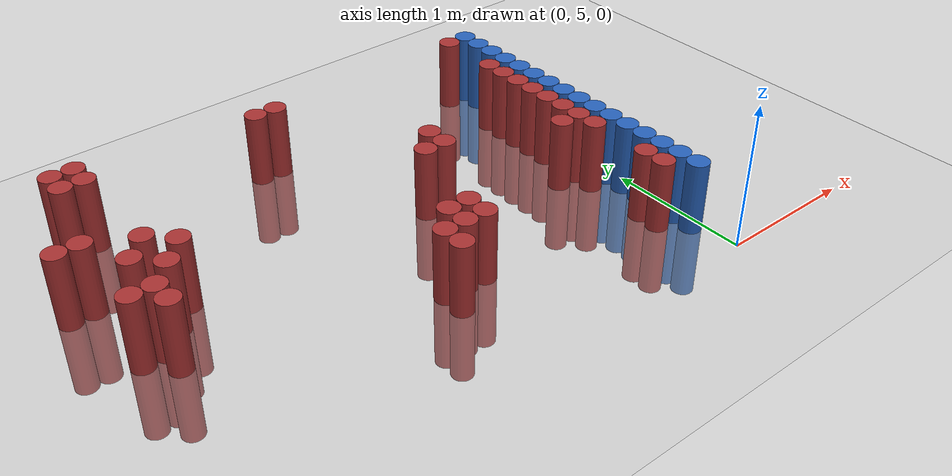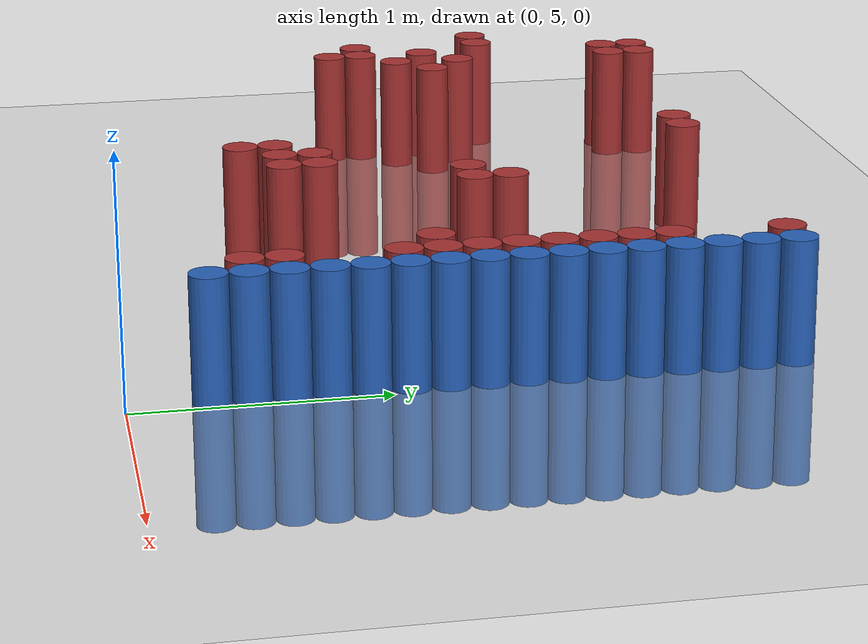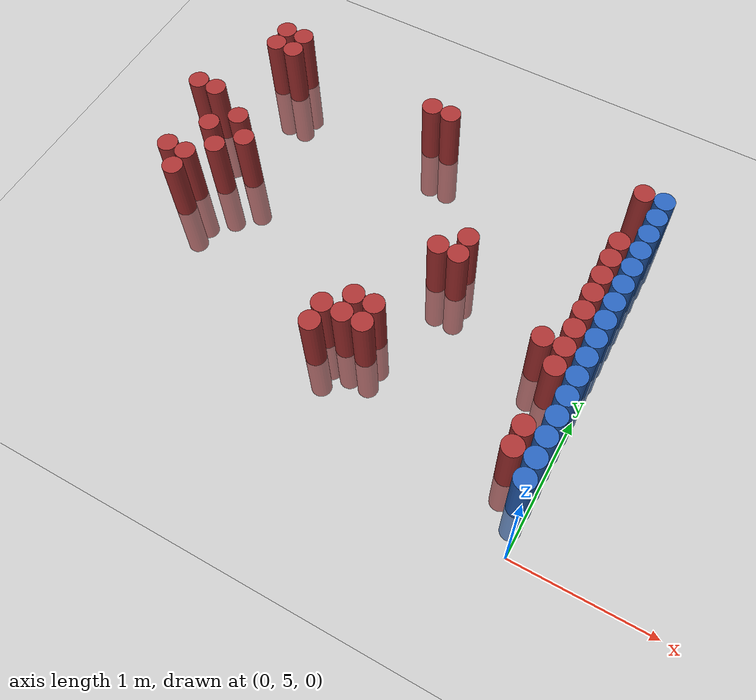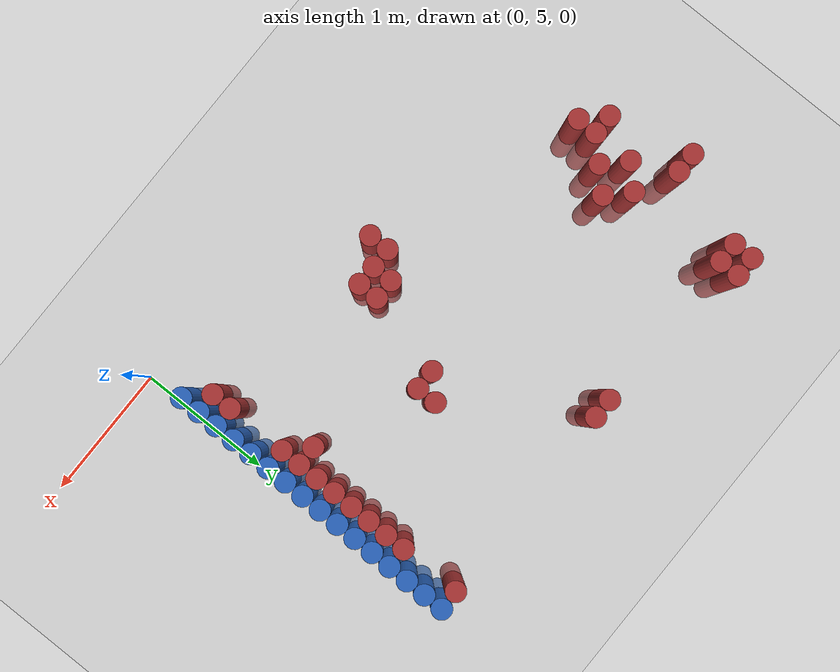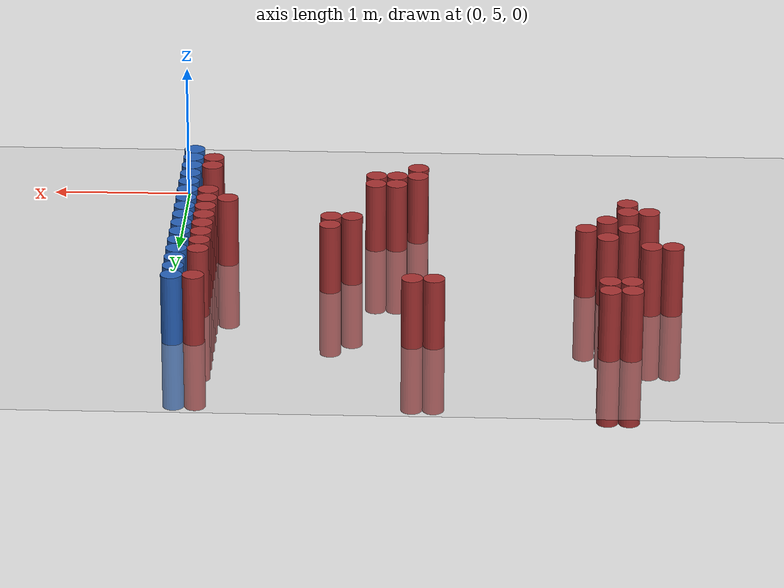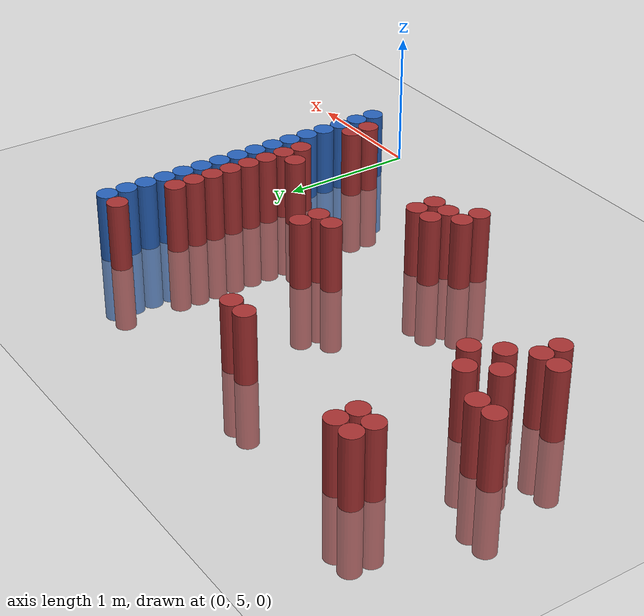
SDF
<sdf version="1.6">
 <world name="default">
  <model name="ground_plane">
   <static>1</static>
   <link name="link">
    <collision name="collision">
     <geometry><plane><normal>0 0 1</normal><size>100 100</size></plane></geometry>
     <surface><friction><ode><mu>100</mu><mu2>50</mu2></ode></friction></surface>
    </collision>
    <visual name="visual">
     <cast_shadows>0</cast_shadows>
     <geometry><plane><normal>0 0 1</normal><size>100 100</size></plane></geometry>
     <material>
      <script><uri>file://media/materials/scripts/gazebo.material</uri><name>Gazebo/Grey</name></script>
     </material>
    </visual>
   </link>
  </model>
  <model name="unit_cylinder_151">
   <static>1</static>
   <pose>-3.525000 6.975000 0.000000 0.000000 0.000000 0.000000</pose>
   <link name="link">
    <inertial>
     <mass>1</mass>
     <inertia><ixx>0.145833</ixx><ixy>0</ixy><ixz>0</ixz><iyy>0.145833</iyy><iyz>0</iyz><izz>0.125</izz></inertia>
    </inertial>
    <collision name="collision">
     <geometry><cylinder><radius>0.075000</radius><length>1</length></cylinder></geometry>
    </collision>
    <visual name="visual">
     <geometry><cylinder><radius>0.075000</radius><length>1</length></cylinder></geometry>
     <material>
      <ambient>0.648000 0.192000 0.192000 1</ambient>
      <diffuse>0.648000 0.192000 0.192000 1</diffuse>
     </material>
     <material>
      <script><name>Gazebo/Grey</name><uri>file://media/materials/scripts/gazebo.material</uri></script>
     </material>
    </visual>
   </link>
  </model>
  <model name="unit_cylinder_153">
   <static>1</static>
   <pose>-3.375000 6.375000 0.000000 0.000000 0.000000 0.000000</pose>
   <link name="link">
    <inertial>
     <mass>1</mass>
     <inertia><ixx>0.145833</ixx><ixy>0</ixy><ixz>0</ixz><iyy>0.145833</iyy><iyz>0</iyz><izz>0.125</izz></inertia>
    </inertial>
    <collision name="collision">
     <geometry><cylinder><radius>0.075000</radius><length>1</length></cylinder></geometry>
    </collision>
    <visual name="visual">
     <geometry><cylinder><radius>0.075000</radius><length>1</length></cylinder></geometry>
     <material>
      <ambient>0.648000 0.192000 0.192000 1</ambient>
      <diffuse>0.648000 0.192000 0.192000 1</diffuse>
     </material>
     <material>
      <script><name>Gazebo/Grey</name><uri>file://media/materials/scripts/gazebo.material</uri></script>
     </material>
    </visual>
   </link>
  </model>
  <model name="unit_cylinder_154">
   <static>1</static>
   <pose>-3.375000 6.975000 0.000000 0.000000 0.000000 0.000000</pose>
   <link name="link">
    <inertial>
     <mass>1</mass>
     <inertia><ixx>0.145833</ixx><ixy>0</ixy><ixz>0</ixz><iyy>0.145833</iyy><iyz>0</iyz><izz>0.125</izz></inertia>
    </inertial>
    <collision name="collision">
     <geometry><cylinder><radius>0.075000</radius><length>1</length></cylinder></geometry>
    </collision>
    <visual name="visual">
     <geometry><cylinder><radius>0.075000</radius><length>1</length></cylinder></geometry>
     <material>
      <ambient>0.648000 0.192000 0.192000 1</ambient>
      <diffuse>0.648000 0.192000 0.192000 1</diffuse>
     </material>
     <material>
      <script><name>Gazebo/Grey</name><uri>file://media/materials/scripts/gazebo.material</uri></script>
     </material>
    </visual>
   </link>
  </model>
  <model name="unit_cylinder_155">
   <static>1</static>
   <pose>-3.225000 6.225000 0.000000 0.000000 0.000000 0.000000</pose>
   <link name="link">
    <inertial>
     <mass>1</mass>
     <inertia><ixx>0.145833</ixx><ixy>0</ixy><ixz>0</ixz><iyy>0.145833</iyy><iyz>0</iyz><izz>0.125</izz></inertia>
    </inertial>
    <collision name="collision">
     <geometry><cylinder><radius>0.075000</radius><length>1</length></cylinder></geometry>
    </collision>
    <visual name="visual">
     <geometry><cylinder><radius>0.075000</radius><length>1</length></cylinder></geometry>
     <material>
      <ambient>0.648000 0.192000 0.192000 1</ambient>
      <diffuse>0.648000 0.192000 0.192000 1</diffuse>
     </material>
     <material>
      <script><name>Gazebo/Grey</name><uri>file://media/materials/scripts/gazebo.material</uri></script>
     </material>
    </visual>
   </link>
  </model>
  <model name="unit_cylinder_156">
   <static>1</static>
   <pose>-3.225000 6.375000 0.000000 0.000000 0.000000 0.000000</pose>
   <link name="link">
    <inertial>
     <mass>1</mass>
     <inertia><ixx>0.145833</ixx><ixy>0</ixy><ixz>0</ixz><iyy>0.145833</iyy><iyz>0</iyz><izz>0.125</izz></inertia>
    </inertial>
    <collision name="collision">
     <geometry><cylinder><radius>0.075000</radius><length>1</length></cylinder></geometry>
    </collision>
    <visual name="visual">
     <geometry><cylinder><radius>0.075000</radius><length>1</length></cylinder></geometry>
     <material>
      <ambient>0.648000 0.192000 0.192000 1</ambient>
      <diffuse>0.648000 0.192000 0.192000 1</diffuse>
     </material>
     <material>
      <script><name>Gazebo/Grey</name><uri>file://media/materials/scripts/gazebo.material</uri></script>
     </material>
    </visual>
   </link>
  </model>
  <model name="unit_cylinder_157">
   <static>1</static>
   <pose>-3.225000 6.675000 0.000000 0.000000 0.000000 0.000000</pose>
   <link name="link">
    <inertial>
     <mass>1</mass>
     <inertia><ixx>0.145833</ixx><ixy>0</ixy><ixz>0</ixz><iyy>0.145833</iyy><iyz>0</iyz><izz>0.125</izz></inertia>
    </inertial>
    <collision name="collision">
     <geometry><cylinder><radius>0.075000</radius><length>1</length></cylinder></geometry>
    </collision>
    <visual name="visual">
     <geometry><cylinder><radius>0.075000</radius><length>1</length></cylinder></geometry>
     <material>
      <ambient>0.648000 0.192000 0.192000 1</ambient>
      <diffuse>0.648000 0.192000 0.192000 1</diffuse>
     </material>
     <material>
      <script><name>Gazebo/Grey</name><uri>file://media/materials/scripts/gazebo.material</uri></script>
     </material>
    </visual>
   </link>
  </model>
  <model name="unit_cylinder_158">
   <static>1</static>
   <pose>-3.225000 7.575000 0.000000 0.000000 0.000000 0.000000</pose>
   <link name="link">
    <inertial>
     <mass>1</mass>
     <inertia><ixx>0.145833</ixx><ixy>0</ixy><ixz>0</ixz><iyy>0.145833</iyy><iyz>0</iyz><izz>0.125</izz></inertia>
    </inertial>
    <collision name="collision">
     <geometry><cylinder><radius>0.075000</radius><length>1</length></cylinder></geometry>
    </collision>
    <visual name="visual">
     <geometry><cylinder><radius>0.075000</radius><length>1</length></cylinder></geometry>
     <material>
      <ambient>0.648000 0.192000 0.192000 1</ambient>
      <diffuse>0.648000 0.192000 0.192000 1</diffuse>
     </material>
     <material>
      <script><name>Gazebo/Grey</name><uri>file://media/materials/scripts/gazebo.material</uri></script>
     </material>
    </visual>
   </link>
  </model>
  <model name="unit_cylinder_159">
   <static>1</static>
   <pose>-3.225000 7.725000 0.000000 0.000000 0.000000 0.000000</pose>
   <link name="link">
    <inertial>
     <mass>1</mass>
     <inertia><ixx>0.145833</ixx><ixy>0</ixy><ixz>0</ixz><iyy>0.145833</iyy><iyz>0</iyz><izz>0.125</izz></inertia>
    </inertial>
    <collision name="collision">
     <geometry><cylinder><radius>0.075000</radius><length>1</length></cylinder></geometry>
    </collision>
    <visual name="visual">
     <geometry><cylinder><radius>0.075000</radius><length>1</length></cylinder></geometry>
     <material>
      <ambient>0.648000 0.192000 0.192000 1</ambient>
      <diffuse>0.648000 0.192000 0.192000 1</diffuse>
     </material>
     <material>
      <script><name>Gazebo/Grey</name><uri>file://media/materials/scripts/gazebo.material</uri></script>
     </material>
    </visual>
   </link>
  </model>
  <model name="unit_cylinder_160">
   <static>1</static>
   <pose>-3.075000 6.525000 0.000000 0.000000 0.000000 0.000000</pose>
   <link name="link">
    <inertial>
     <mass>1</mass>
     <inertia><ixx>0.145833</ixx><ixy>0</ixy><ixz>0</ixz><iyy>0.145833</iyy><iyz>0</iyz><izz>0.125</izz></inertia>
    </inertial>
    <collision name="collision">
     <geometry><cylinder><radius>0.075000</radius><length>1</length></cylinder></geometry>
    </collision>
    <visual name="visual">
     <geometry><cylinder><radius>0.075000</radius><length>1</length></cylinder></geometry>
     <material>
      <ambient>0.648000 0.192000 0.192000 1</ambient>
      <diffuse>0.648000 0.192000 0.192000 1</diffuse>
     </material>
     <material>
      <script><name>Gazebo/Grey</name><uri>file://media/materials/scripts/gazebo.material</uri></script>
     </material>
    </visual>
   </link>
  </model>
  <model name="unit_cylinder_161">
   <static>1</static>
   <pose>-3.075000 6.825000 0.000000 0.000000 0.000000 0.000000</pose>
   <link name="link">
    <inertial>
     <mass>1</mass>
     <inertia><ixx>0.145833</ixx><ixy>0</ixy><ixz>0</ixz><iyy>0.145833</iyy><iyz>0</iyz><izz>0.125</izz></inertia>
    </inertial>
    <collision name="collision">
     <geometry><cylinder><radius>0.075000</radius><length>1</length></cylinder></geometry>
    </collision>
    <visual name="visual">
     <geometry><cylinder><radius>0.075000</radius><length>1</length></cylinder></geometry>
     <material>
      <ambient>0.648000 0.192000 0.192000 1</ambient>
      <diffuse>0.648000 0.192000 0.192000 1</diffuse>
     </material>
     <material>
      <script><name>Gazebo/Grey</name><uri>file://media/materials/scripts/gazebo.material</uri></script>
     </material>
    </visual>
   </link>
  </model>
  <model name="unit_cylinder_162">
   <static>1</static>
   <pose>-3.075000 7.575000 0.000000 0.000000 0.000000 0.000000</pose>
   <link name="link">
    <inertial>
     <mass>1</mass>
     <inertia><ixx>0.145833</ixx><ixy>0</ixy><ixz>0</ixz><iyy>0.145833</iyy><iyz>0</iyz><izz>0.125</izz></inertia>
    </inertial>
    <collision name="collision">
     <geometry><cylinder><radius>0.075000</radius><length>1</length></cylinder></geometry>
    </collision>
    <visual name="visual">
     <geometry><cylinder><radius>0.075000</radius><length>1</length></cylinder></geometry>
     <material>
      <ambient>0.648000 0.192000 0.192000 1</ambient>
      <diffuse>0.648000 0.192000 0.192000 1</diffuse>
     </material>
     <material>
      <script><name>Gazebo/Grey</name><uri>file://media/materials/scripts/gazebo.material</uri></script>
     </material>
    </visual>
   </link>
  </model>
  <model name="unit_cylinder_163">
   <static>1</static>
   <pose>-3.075000 7.725000 0.000000 0.000000 0.000000 0.000000</pose>
   <link name="link">
    <inertial>
     <mass>1</mass>
     <inertia><ixx>0.145833</ixx><ixy>0</ixy><ixz>0</ixz><iyy>0.145833</iyy><iyz>0</iyz><izz>0.125</izz></inertia>
    </inertial>
    <collision name="collision">
     <geometry><cylinder><radius>0.075000</radius><length>1</length></cylinder></geometry>
    </collision>
    <visual name="visual">
     <geometry><cylinder><radius>0.075000</radius><length>1</length></cylinder></geometry>
     <material>
      <ambient>0.648000 0.192000 0.192000 1</ambient>
      <diffuse>0.648000 0.192000 0.192000 1</diffuse>
     </material>
     <material>
      <script><name>Gazebo/Grey</name><uri>file://media/materials/scripts/gazebo.material</uri></script>
     </material>
    </visual>
   </link>
  </model>
  <model name="unit_cylinder_166">
   <static>1</static>
   <pose>-2.925000 6.675000 0.000000 0.000000 0.000000 0.000000</pose>
   <link name="link">
    <inertial>
     <mass>1</mass>
     <inertia><ixx>0.145833</ixx><ixy>0</ixy><ixz>0</ixz><iyy>0.145833</iyy><iyz>0</iyz><izz>0.125</izz></inertia>
    </inertial>
    <collision name="collision">
     <geometry><cylinder><radius>0.075000</radius><length>1</length></cylinder></geometry>
    </collision>
    <visual name="visual">
     <geometry><cylinder><radius>0.075000</radius><length>1</length></cylinder></geometry>
     <material>
      <ambient>0.648000 0.192000 0.192000 1</ambient>
      <diffuse>0.648000 0.192000 0.192000 1</diffuse>
     </material>
     <material>
      <script><name>Gazebo/Grey</name><uri>file://media/materials/scripts/gazebo.material</uri></script>
     </material>
    </visual>
   </link>
  </model>
  <model name="unit_cylinder_177">
   <static>1</static>
   <pose>-1.875000 7.575000 0.000000 0.000000 0.000000 0.000000</pose>
   <link name="link">
    <inertial>
     <mass>1</mass>
     <inertia><ixx>0.145833</ixx><ixy>0</ixy><ixz>0</ixz><iyy>0.145833</iyy><iyz>0</iyz><izz>0.125</izz></inertia>
    </inertial>
    <collision name="collision">
     <geometry><cylinder><radius>0.075000</radius><length>1</length></cylinder></geometry>
    </collision>
    <visual name="visual">
     <geometry><cylinder><radius>0.075000</radius><length>1</length></cylinder></geometry>
     <material>
      <ambient>0.648000 0.192000 0.192000 1</ambient>
      <diffuse>0.648000 0.192000 0.192000 1</diffuse>
     </material>
     <material>
      <script><name>Gazebo/Grey</name><uri>file://media/materials/scripts/gazebo.material</uri></script>
     </material>
    </visual>
   </link>
  </model>
  <model name="unit_cylinder_186">
   <static>1</static>
   <pose>-1.725000 5.625000 0.000000 0.000000 0.000000 0.000000</pose>
   <link name="link">
    <inertial>
     <mass>1</mass>
     <inertia><ixx>0.145833</ixx><ixy>0</ixy><ixz>0</ixz><iyy>0.145833</iyy><iyz>0</iyz><izz>0.125</izz></inertia>
    </inertial>
    <collision name="collision">
     <geometry><cylinder><radius>0.075000</radius><length>1</length></cylinder></geometry>
    </collision>
    <visual name="visual">
     <geometry><cylinder><radius>0.075000</radius><length>1</length></cylinder></geometry>
     <material>
      <ambient>0.648000 0.192000 0.192000 1</ambient>
      <diffuse>0.648000 0.192000 0.192000 1</diffuse>
     </material>
     <material>
      <script><name>Gazebo/Grey</name><uri>file://media/materials/scripts/gazebo.material</uri></script>
     </material>
    </visual>
   </link>
  </model>
  <model name="unit_cylinder_187">
   <static>1</static>
   <pose>-1.725000 5.775000 0.000000 0.000000 0.000000 0.000000</pose>
   <link name="link">
    <inertial>
     <mass>1</mass>
     <inertia><ixx>0.145833</ixx><ixy>0</ixy><ixz>0</ixz><iyy>0.145833</iyy><iyz>0</iyz><izz>0.125</izz></inertia>
    </inertial>
    <collision name="collision">
     <geometry><cylinder><radius>0.075000</radius><length>1</length></cylinder></geometry>
    </collision>
    <visual name="visual">
     <geometry><cylinder><radius>0.075000</radius><length>1</length></cylinder></geometry>
     <material>
      <ambient>0.648000 0.192000 0.192000 1</ambient>
      <diffuse>0.648000 0.192000 0.192000 1</diffuse>
     </material>
     <material>
      <script><name>Gazebo/Grey</name><uri>file://media/materials/scripts/gazebo.material</uri></script>
     </material>
    </visual>
   </link>
  </model>
  <model name="unit_cylinder_188">
   <static>1</static>
   <pose>-1.725000 7.575000 0.000000 0.000000 0.000000 0.000000</pose>
   <link name="link">
    <inertial>
     <mass>1</mass>
     <inertia><ixx>0.145833</ixx><ixy>0</ixy><ixz>0</ixz><iyy>0.145833</iyy><iyz>0</iyz><izz>0.125</izz></inertia>
    </inertial>
    <collision name="collision">
     <geometry><cylinder><radius>0.075000</radius><length>1</length></cylinder></geometry>
    </collision>
    <visual name="visual">
     <geometry><cylinder><radius>0.075000</radius><length>1</length></cylinder></geometry>
     <material>
      <ambient>0.648000 0.192000 0.192000 1</ambient>
      <diffuse>0.648000 0.192000 0.192000 1</diffuse>
     </material>
     <material>
      <script><name>Gazebo/Grey</name><uri>file://media/materials/scripts/gazebo.material</uri></script>
     </material>
    </visual>
   </link>
  </model>
  <model name="unit_cylinder_192">
   <static>1</static>
   <pose>-1.575000 5.775000 0.000000 0.000000 0.000000 0.000000</pose>
   <link name="link">
    <inertial>
     <mass>1</mass>
     <inertia><ixx>0.145833</ixx><ixy>0</ixy><ixz>0</ixz><iyy>0.145833</iyy><iyz>0</iyz><izz>0.125</izz></inertia>
    </inertial>
    <collision name="collision">
     <geometry><cylinder><radius>0.075000</radius><length>1</length></cylinder></geometry>
    </collision>
    <visual name="visual">
     <geometry><cylinder><radius>0.075000</radius><length>1</length></cylinder></geometry>
     <material>
      <ambient>0.648000 0.192000 0.192000 1</ambient>
      <diffuse>0.648000 0.192000 0.192000 1</diffuse>
     </material>
     <material>
      <script><name>Gazebo/Grey</name><uri>file://media/materials/scripts/gazebo.material</uri></script>
     </material>
    </visual>
   </link>
  </model>
  <model name="unit_cylinder_193">
   <static>1</static>
   <pose>-1.575000 5.925000 0.000000 0.000000 0.000000 0.000000</pose>
   <link name="link">
    <inertial>
     <mass>1</mass>
     <inertia><ixx>0.145833</ixx><ixy>0</ixy><ixz>0</ixz><iyy>0.145833</iyy><iyz>0</iyz><izz>0.125</izz></inertia>
    </inertial>
    <collision name="collision">
     <geometry><cylinder><radius>0.075000</radius><length>1</length></cylinder></geometry>
    </collision>
    <visual name="visual">
     <geometry><cylinder><radius>0.075000</radius><length>1</length></cylinder></geometry>
     <material>
      <ambient>0.648000 0.192000 0.192000 1</ambient>
      <diffuse>0.648000 0.192000 0.192000 1</diffuse>
     </material>
     <material>
      <script><name>Gazebo/Grey</name><uri>file://media/materials/scripts/gazebo.material</uri></script>
     </material>
    </visual>
   </link>
  </model>
  <model name="unit_cylinder_196">
   <static>1</static>
   <pose>-1.425000 5.775000 0.000000 0.000000 0.000000 0.000000</pose>
   <link name="link">
    <inertial>
     <mass>1</mass>
     <inertia><ixx>0.145833</ixx><ixy>0</ixy><ixz>0</ixz><iyy>0.145833</iyy><iyz>0</iyz><izz>0.125</izz></inertia>
    </inertial>
    <collision name="collision">
     <geometry><cylinder><radius>0.075000</radius><length>1</length></cylinder></geometry>
    </collision>
    <visual name="visual">
     <geometry><cylinder><radius>0.075000</radius><length>1</length></cylinder></geometry>
     <material>
      <ambient>0.648000 0.192000 0.192000 1</ambient>
      <diffuse>0.648000 0.192000 0.192000 1</diffuse>
     </material>
     <material>
      <script><name>Gazebo/Grey</name><uri>file://media/materials/scripts/gazebo.material</uri></script>
     </material>
    </visual>
   </link>
  </model>
  <model name="unit_cylinder_197">
   <static>1</static>
   <pose>-1.425000 5.925000 0.000000 0.000000 0.000000 0.000000</pose>
   <link name="link">
    <inertial>
     <mass>1</mass>
     <inertia><ixx>0.145833</ixx><ixy>0</ixy><ixz>0</ixz><iyy>0.145833</iyy><iyz>0</iyz><izz>0.125</izz></inertia>
    </inertial>
    <collision name="collision">
     <geometry><cylinder><radius>0.075000</radius><length>1</length></cylinder></geometry>
    </collision>
    <visual name="visual">
     <geometry><cylinder><radius>0.075000</radius><length>1</length></cylinder></geometry>
     <material>
      <ambient>0.648000 0.192000 0.192000 1</ambient>
      <diffuse>0.648000 0.192000 0.192000 1</diffuse>
     </material>
     <material>
      <script><name>Gazebo/Grey</name><uri>file://media/materials/scripts/gazebo.material</uri></script>
     </material>
    </visual>
   </link>
  </model>
  <model name="unit_cylinder_199">
   <static>1</static>
   <pose>-1.275000 6.525000 0.000000 0.000000 0.000000 0.000000</pose>
   <link name="link">
    <inertial>
     <mass>1</mass>
     <inertia><ixx>0.145833</ixx><ixy>0</ixy><ixz>0</ixz><iyy>0.145833</iyy><iyz>0</iyz><izz>0.125</izz></inertia>
    </inertial>
    <collision name="collision">
     <geometry><cylinder><radius>0.075000</radius><length>1</length></cylinder></geometry>
    </collision>
    <visual name="visual">
     <geometry><cylinder><radius>0.075000</radius><length>1</length></cylinder></geometry>
     <material>
      <ambient>0.648000 0.192000 0.192000 1</ambient>
      <diffuse>0.648000 0.192000 0.192000 1</diffuse>
     </material>
     <material>
      <script><name>Gazebo/Grey</name><uri>file://media/materials/scripts/gazebo.material</uri></script>
     </material>
    </visual>
   </link>
  </model>
  <model name="unit_cylinder_200">
   <static>1</static>
   <pose>-1.125000 6.525000 0.000000 0.000000 0.000000 0.000000</pose>
   <link name="link">
    <inertial>
     <mass>1</mass>
     <inertia><ixx>0.145833</ixx><ixy>0</ixy><ixz>0</ixz><iyy>0.145833</iyy><iyz>0</iyz><izz>0.125</izz></inertia>
    </inertial>
    <collision name="collision">
     <geometry><cylinder><radius>0.075000</radius><length>1</length></cylinder></geometry>
    </collision>
    <visual name="visual">
     <geometry><cylinder><radius>0.075000</radius><length>1</length></cylinder></geometry>
     <material>
      <ambient>0.648000 0.192000 0.192000 1</ambient>
      <diffuse>0.648000 0.192000 0.192000 1</diffuse>
     </material>
     <material>
      <script><name>Gazebo/Grey</name><uri>file://media/materials/scripts/gazebo.material</uri></script>
     </material>
    </visual>
   </link>
  </model>
  <model name="unit_cylinder_201">
   <static>1</static>
   <pose>-1.125000 6.675000 0.000000 0.000000 0.000000 0.000000</pose>
   <link name="link">
    <inertial>
     <mass>1</mass>
     <inertia><ixx>0.145833</ixx><ixy>0</ixy><ixz>0</ixz><iyy>0.145833</iyy><iyz>0</iyz><izz>0.125</izz></inertia>
    </inertial>
    <collision name="collision">
     <geometry><cylinder><radius>0.075000</radius><length>1</length></cylinder></geometry>
    </collision>
    <visual name="visual">
     <geometry><cylinder><radius>0.075000</radius><length>1</length></cylinder></geometry>
     <material>
      <ambient>0.648000 0.192000 0.192000 1</ambient>
      <diffuse>0.648000 0.192000 0.192000 1</diffuse>
     </material>
     <material>
      <script><name>Gazebo/Grey</name><uri>file://media/materials/scripts/gazebo.material</uri></script>
     </material>
    </visual>
   </link>
  </model>
  <model name="unit_cylinder_210">
   <static>1</static>
   <pose>-0.375000 6.225000 0.000000 0.000000 0.000000 0.000000</pose>
   <link name="link">
    <inertial>
     <mass>1</mass>
     <inertia><ixx>0.145833</ixx><ixy>0</ixy><ixz>0</ixz><iyy>0.145833</iyy><iyz>0</iyz><izz>0.125</izz></inertia>
    </inertial>
    <collision name="collision">
     <geometry><cylinder><radius>0.075000</radius><length>1</length></cylinder></geometry>
    </collision>
    <visual name="visual">
     <geometry><cylinder><radius>0.075000</radius><length>1</length></cylinder></geometry>
     <material>
      <ambient>0.648000 0.192000 0.192000 1</ambient>
      <diffuse>0.648000 0.192000 0.192000 1</diffuse>
     </material>
     <material>
      <script><name>Gazebo/Grey</name><uri>file://media/materials/scripts/gazebo.material</uri></script>
     </material>
    </visual>
   </link>
  </model>
  <model name="unit_cylinder_215">
   <static>1</static>
   <pose>-0.225000 5.475000 0.000000 0.000000 0.000000 0.000000</pose>
   <link name="link">
    <inertial>
     <mass>1</mass>
     <inertia><ixx>0.145833</ixx><ixy>0</ixy><ixz>0</ixz><iyy>0.145833</iyy><iyz>0</iyz><izz>0.125</izz></inertia>
    </inertial>
    <collision name="collision">
     <geometry><cylinder><radius>0.075000</radius><length>1</length></cylinder></geometry>
    </collision>
    <visual name="visual">
     <geometry><cylinder><radius>0.075000</radius><length>1</length></cylinder></geometry>
     <material>
      <ambient>0.648000 0.192000 0.192000 1</ambient>
      <diffuse>0.648000 0.192000 0.192000 1</diffuse>
     </material>
     <material>
      <script><name>Gazebo/Grey</name><uri>file://media/materials/scripts/gazebo.material</uri></script>
     </material>
    </visual>
   </link>
  </model>
  <model name="unit_cylinder_216">
   <static>1</static>
   <pose>-0.225000 5.625000 0.000000 0.000000 0.000000 0.000000</pose>
   <link name="link">
    <inertial>
     <mass>1</mass>
     <inertia><ixx>0.145833</ixx><ixy>0</ixy><ixz>0</ixz><iyy>0.145833</iyy><iyz>0</iyz><izz>0.125</izz></inertia>
    </inertial>
    <collision name="collision">
     <geometry><cylinder><radius>0.075000</radius><length>1</length></cylinder></geometry>
    </collision>
    <visual name="visual">
     <geometry><cylinder><radius>0.075000</radius><length>1</length></cylinder></geometry>
     <material>
      <ambient>0.648000 0.192000 0.192000 1</ambient>
      <diffuse>0.648000 0.192000 0.192000 1</diffuse>
     </material>
     <material>
      <script><name>Gazebo/Grey</name><uri>file://media/materials/scripts/gazebo.material</uri></script>
     </material>
    </visual>
   </link>
  </model>
  <model name="unit_cylinder_217">
   <static>1</static>
   <pose>-0.225000 6.075000 0.000000 0.000000 0.000000 0.000000</pose>
   <link name="link">
    <inertial>
     <mass>1</mass>
     <inertia><ixx>0.145833</ixx><ixy>0</ixy><ixz>0</ixz><iyy>0.145833</iyy><iyz>0</iyz><izz>0.125</izz></inertia>
    </inertial>
    <collision name="collision">
     <geometry><cylinder><radius>0.075000</radius><length>1</length></cylinder></geometry>
    </collision>
    <visual name="visual">
     <geometry><cylinder><radius>0.075000</radius><length>1</length></cylinder></geometry>
     <material>
      <ambient>0.648000 0.192000 0.192000 1</ambient>
      <diffuse>0.648000 0.192000 0.192000 1</diffuse>
     </material>
     <material>
      <script><name>Gazebo/Grey</name><uri>file://media/materials/scripts/gazebo.material</uri></script>
     </material>
    </visual>
   </link>
  </model>
  <model name="unit_cylinder_218">
   <static>1</static>
   <pose>-0.225000 6.225000 0.000000 0.000000 0.000000 0.000000</pose>
   <link name="link">
    <inertial>
     <mass>1</mass>
     <inertia><ixx>0.145833</ixx><ixy>0</ixy><ixz>0</ixz><iyy>0.145833</iyy><iyz>0</iyz><izz>0.125</izz></inertia>
    </inertial>
    <collision name="collision">
     <geometry><cylinder><radius>0.075000</radius><length>1</length></cylinder></geometry>
    </collision>
    <visual name="visual">
     <geometry><cylinder><radius>0.075000</radius><length>1</length></cylinder></geometry>
     <material>
      <ambient>0.648000 0.192000 0.192000 1</ambient>
      <diffuse>0.648000 0.192000 0.192000 1</diffuse>
     </material>
     <material>
      <script><name>Gazebo/Grey</name><uri>file://media/materials/scripts/gazebo.material</uri></script>
     </material>
    </visual>
   </link>
  </model>
  <model name="unit_cylinder_219">
   <static>1</static>
   <pose>-0.225000 6.375000 0.000000 0.000000 0.000000 0.000000</pose>
   <link name="link">
    <inertial>
     <mass>1</mass>
     <inertia><ixx>0.145833</ixx><ixy>0</ixy><ixz>0</ixz><iyy>0.145833</iyy><iyz>0</iyz><izz>0.125</izz></inertia>
    </inertial>
    <collision name="collision">
     <geometry><cylinder><radius>0.075000</radius><length>1</length></cylinder></geometry>
    </collision>
    <visual name="visual">
     <geometry><cylinder><radius>0.075000</radius><length>1</length></cylinder></geometry>
     <material>
      <ambient>0.648000 0.192000 0.192000 1</ambient>
      <diffuse>0.648000 0.192000 0.192000 1</diffuse>
     </material>
     <material>
      <script><name>Gazebo/Grey</name><uri>file://media/materials/scripts/gazebo.material</uri></script>
     </material>
    </visual>
   </link>
  </model>
  <model name="unit_cylinder_220">
   <static>1</static>
   <pose>-0.225000 6.525000 0.000000 0.000000 0.000000 0.000000</pose>
   <link name="link">
    <inertial>
     <mass>1</mass>
     <inertia><ixx>0.145833</ixx><ixy>0</ixy><ixz>0</ixz><iyy>0.145833</iyy><iyz>0</iyz><izz>0.125</izz></inertia>
    </inertial>
    <collision name="collision">
     <geometry><cylinder><radius>0.075000</radius><length>1</length></cylinder></geometry>
    </collision>
    <visual name="visual">
     <geometry><cylinder><radius>0.075000</radius><length>1</length></cylinder></geometry>
     <material>
      <ambient>0.648000 0.192000 0.192000 1</ambient>
      <diffuse>0.648000 0.192000 0.192000 1</diffuse>
     </material>
     <material>
      <script><name>Gazebo/Grey</name><uri>file://media/materials/scripts/gazebo.material</uri></script>
     </material>
    </visual>
   </link>
  </model>
  <model name="unit_cylinder_221">
   <static>1</static>
   <pose>-0.225000 6.675000 0.000000 0.000000 0.000000 0.000000</pose>
   <link name="link">
    <inertial>
     <mass>1</mass>
     <inertia><ixx>0.145833</ixx><ixy>0</ixy><ixz>0</ixz><iyy>0.145833</iyy><iyz>0</iyz><izz>0.125</izz></inertia>
    </inertial>
    <collision name="collision">
     <geometry><cylinder><radius>0.075000</radius><length>1</length></cylinder></geometry>
    </collision>
    <visual name="visual">
     <geometry><cylinder><radius>0.075000</radius><length>1</length></cylinder></geometry>
     <material>
      <ambient>0.648000 0.192000 0.192000 1</ambient>
      <diffuse>0.648000 0.192000 0.192000 1</diffuse>
     </material>
     <material>
      <script><name>Gazebo/Grey</name><uri>file://media/materials/scripts/gazebo.material</uri></script>
     </material>
    </visual>
   </link>
  </model>
  <model name="unit_cylinder_222">
   <static>1</static>
   <pose>-0.225000 6.825000 0.000000 0.000000 0.000000 0.000000</pose>
   <link name="link">
    <inertial>
     <mass>1</mass>
     <inertia><ixx>0.145833</ixx><ixy>0</ixy><ixz>0</ixz><iyy>0.145833</iyy><iyz>0</iyz><izz>0.125</izz></inertia>
    </inertial>
    <collision name="collision">
     <geometry><cylinder><radius>0.075000</radius><length>1</length></cylinder></geometry>
    </collision>
    <visual name="visual">
     <geometry><cylinder><radius>0.075000</radius><length>1</length></cylinder></geometry>
     <material>
      <ambient>0.648000 0.192000 0.192000 1</ambient>
      <diffuse>0.648000 0.192000 0.192000 1</diffuse>
     </material>
     <material>
      <script><name>Gazebo/Grey</name><uri>file://media/materials/scripts/gazebo.material</uri></script>
     </material>
    </visual>
   </link>
  </model>
  <model name="unit_cylinder_223">
   <static>1</static>
   <pose>-0.225000 6.975000 0.000000 0.000000 0.000000 0.000000</pose>
   <link name="link">
    <inertial>
     <mass>1</mass>
     <inertia><ixx>0.145833</ixx><ixy>0</ixy><ixz>0</ixz><iyy>0.145833</iyy><iyz>0</iyz><izz>0.125</izz></inertia>
    </inertial>
    <collision name="collision">
     <geometry><cylinder><radius>0.075000</radius><length>1</length></cylinder></geometry>
    </collision>
    <visual name="visual">
     <geometry><cylinder><radius>0.075000</radius><length>1</length></cylinder></geometry>
     <material>
      <ambient>0.648000 0.192000 0.192000 1</ambient>
      <diffuse>0.648000 0.192000 0.192000 1</diffuse>
     </material>
     <material>
      <script><name>Gazebo/Grey</name><uri>file://media/materials/scripts/gazebo.material</uri></script>
     </material>
    </visual>
   </link>
  </model>
  <model name="unit_cylinder_224">
   <static>1</static>
   <pose>-0.225000 7.125000 0.000000 0.000000 0.000000 0.000000</pose>
   <link name="link">
    <inertial>
     <mass>1</mass>
     <inertia><ixx>0.145833</ixx><ixy>0</ixy><ixz>0</ixz><iyy>0.145833</iyy><iyz>0</iyz><izz>0.125</izz></inertia>
    </inertial>
    <collision name="collision">
     <geometry><cylinder><radius>0.075000</radius><length>1</length></cylinder></geometry>
    </collision>
    <visual name="visual">
     <geometry><cylinder><radius>0.075000</radius><length>1</length></cylinder></geometry>
     <material>
      <ambient>0.648000 0.192000 0.192000 1</ambient>
      <diffuse>0.648000 0.192000 0.192000 1</diffuse>
     </material>
     <material>
      <script><name>Gazebo/Grey</name><uri>file://media/materials/scripts/gazebo.material</uri></script>
     </material>
    </visual>
   </link>
  </model>
  <model name="unit_cylinder_225">
   <static>1</static>
   <pose>-0.225000 7.575000 0.000000 0.000000 0.000000 0.000000</pose>
   <link name="link">
    <inertial>
     <mass>1</mass>
     <inertia><ixx>0.145833</ixx><ixy>0</ixy><ixz>0</ixz><iyy>0.145833</iyy><iyz>0</iyz><izz>0.125</izz></inertia>
    </inertial>
    <collision name="collision">
     <geometry><cylinder><radius>0.075000</radius><length>1</length></cylinder></geometry>
    </collision>
    <visual name="visual">
     <geometry><cylinder><radius>0.075000</radius><length>1</length></cylinder></geometry>
     <material>
      <ambient>0.648000 0.192000 0.192000 1</ambient>
      <diffuse>0.648000 0.192000 0.192000 1</diffuse>
     </material>
     <material>
      <script><name>Gazebo/Grey</name><uri>file://media/materials/scripts/gazebo.material</uri></script>
     </material>
    </visual>
   </link>
  </model>
  <model name="unit_cylinder_232">
   <static>1</static>
   <pose>-0.075000 5.325000 0.000000 0.000000 0.000000 0.000000</pose>
   <link name="link">
    <inertial>
     <mass>1</mass>
     <inertia><ixx>0.145833</ixx><ixy>0</ixy><ixz>0</ixz><iyy>0.145833</iyy><iyz>0</iyz><izz>0.125</izz></inertia>
    </inertial>
    <collision name="collision">
     <geometry><cylinder><radius>0.075000</radius><length>1</length></cylinder></geometry>
    </collision>
    <visual name="visual">
     <geometry><cylinder><radius>0.075000</radius><length>1</length></cylinder></geometry>
     <material>
      <ambient>0.152000 0.379000 0.720000 1</ambient>
      <diffuse>0.152000 0.379000 0.720000 1</diffuse>
     </material>
     <material>
      <script><name>Gazebo/Grey</name><uri>file://media/materials/scripts/gazebo.material</uri></script>
     </material>
    </visual>
   </link>
  </model>
  <model name="unit_cylinder_233">
   <static>1</static>
   <pose>-0.075000 5.475000 0.000000 0.000000 0.000000 0.000000</pose>
   <link name="link">
    <inertial>
     <mass>1</mass>
     <inertia><ixx>0.145833</ixx><ixy>0</ixy><ixz>0</ixz><iyy>0.145833</iyy><iyz>0</iyz><izz>0.125</izz></inertia>
    </inertial>
    <collision name="collision">
     <geometry><cylinder><radius>0.075000</radius><length>1</length></cylinder></geometry>
    </collision>
    <visual name="visual">
     <geometry><cylinder><radius>0.075000</radius><length>1</length></cylinder></geometry>
     <material>
      <ambient>0.152000 0.379000 0.720000 1</ambient>
      <diffuse>0.152000 0.379000 0.720000 1</diffuse>
     </material>
     <material>
      <script><name>Gazebo/Grey</name><uri>file://media/materials/scripts/gazebo.material</uri></script>
     </material>
    </visual>
   </link>
  </model>
  <model name="unit_cylinder_234">
   <static>1</static>
   <pose>-0.075000 5.625000 0.000000 0.000000 0.000000 0.000000</pose>
   <link name="link">
    <inertial>
     <mass>1</mass>
     <inertia><ixx>0.145833</ixx><ixy>0</ixy><ixz>0</ixz><iyy>0.145833</iyy><iyz>0</iyz><izz>0.125</izz></inertia>
    </inertial>
    <collision name="collision">
     <geometry><cylinder><radius>0.075000</radius><length>1</length></cylinder></geometry>
    </collision>
    <visual name="visual">
     <geometry><cylinder><radius>0.075000</radius><length>1</length></cylinder></geometry>
     <material>
      <ambient>0.152000 0.379000 0.720000 1</ambient>
      <diffuse>0.152000 0.379000 0.720000 1</diffuse>
     </material>
     <material>
      <script><name>Gazebo/Grey</name><uri>file://media/materials/scripts/gazebo.material</uri></script>
     </material>
    </visual>
   </link>
  </model>
  <model name="unit_cylinder_235">
   <static>1</static>
   <pose>-0.075000 5.775000 0.000000 0.000000 0.000000 0.000000</pose>
   <link name="link">
    <inertial>
     <mass>1</mass>
     <inertia><ixx>0.145833</ixx><ixy>0</ixy><ixz>0</ixz><iyy>0.145833</iyy><iyz>0</iyz><izz>0.125</izz></inertia>
    </inertial>
    <collision name="collision">
     <geometry><cylinder><radius>0.075000</radius><length>1</length></cylinder></geometry>
    </collision>
    <visual name="visual">
     <geometry><cylinder><radius>0.075000</radius><length>1</length></cylinder></geometry>
     <material>
      <ambient>0.152000 0.379000 0.720000 1</ambient>
      <diffuse>0.152000 0.379000 0.720000 1</diffuse>
     </material>
     <material>
      <script><name>Gazebo/Grey</name><uri>file://media/materials/scripts/gazebo.material</uri></script>
     </material>
    </visual>
   </link>
  </model>
  <model name="unit_cylinder_236">
   <static>1</static>
   <pose>-0.075000 5.925000 0.000000 0.000000 0.000000 0.000000</pose>
   <link name="link">
    <inertial>
     <mass>1</mass>
     <inertia><ixx>0.145833</ixx><ixy>0</ixy><ixz>0</ixz><iyy>0.145833</iyy><iyz>0</iyz><izz>0.125</izz></inertia>
    </inertial>
    <collision name="collision">
     <geometry><cylinder><radius>0.075000</radius><length>1</length></cylinder></geometry>
    </collision>
    <visual name="visual">
     <geometry><cylinder><radius>0.075000</radius><length>1</length></cylinder></geometry>
     <material>
      <ambient>0.152000 0.379000 0.720000 1</ambient>
      <diffuse>0.152000 0.379000 0.720000 1</diffuse>
     </material>
     <material>
      <script><name>Gazebo/Grey</name><uri>file://media/materials/scripts/gazebo.material</uri></script>
     </material>
    </visual>
   </link>
  </model>
  <model name="unit_cylinder_237">
   <static>1</static>
   <pose>-0.075000 6.075000 0.000000 0.000000 0.000000 0.000000</pose>
   <link name="link">
    <inertial>
     <mass>1</mass>
     <inertia><ixx>0.145833</ixx><ixy>0</ixy><ixz>0</ixz><iyy>0.145833</iyy><iyz>0</iyz><izz>0.125</izz></inertia>
    </inertial>
    <collision name="collision">
     <geometry><cylinder><radius>0.075000</radius><length>1</length></cylinder></geometry>
    </collision>
    <visual name="visual">
     <geometry><cylinder><radius>0.075000</radius><length>1</length></cylinder></geometry>
     <material>
      <ambient>0.152000 0.379000 0.720000 1</ambient>
      <diffuse>0.152000 0.379000 0.720000 1</diffuse>
     </material>
     <material>
      <script><name>Gazebo/Grey</name><uri>file://media/materials/scripts/gazebo.material</uri></script>
     </material>
    </visual>
   </link>
  </model>
  <model name="unit_cylinder_238">
   <static>1</static>
   <pose>-0.075000 6.225000 0.000000 0.000000 0.000000 0.000000</pose>
   <link name="link">
    <inertial>
     <mass>1</mass>
     <inertia><ixx>0.145833</ixx><ixy>0</ixy><ixz>0</ixz><iyy>0.145833</iyy><iyz>0</iyz><izz>0.125</izz></inertia>
    </inertial>
    <collision name="collision">
     <geometry><cylinder><radius>0.075000</radius><length>1</length></cylinder></geometry>
    </collision>
    <visual name="visual">
     <geometry><cylinder><radius>0.075000</radius><length>1</length></cylinder></geometry>
     <material>
      <ambient>0.152000 0.379000 0.720000 1</ambient>
      <diffuse>0.152000 0.379000 0.720000 1</diffuse>
     </material>
     <material>
      <script><name>Gazebo/Grey</name><uri>file://media/materials/scripts/gazebo.material</uri></script>
     </material>
    </visual>
   </link>
  </model>
  <model name="unit_cylinder_239">
   <static>1</static>
   <pose>-0.075000 6.375000 0.000000 0.000000 0.000000 0.000000</pose>
   <link name="link">
    <inertial>
     <mass>1</mass>
     <inertia><ixx>0.145833</ixx><ixy>0</ixy><ixz>0</ixz><iyy>0.145833</iyy><iyz>0</iyz><izz>0.125</izz></inertia>
    </inertial>
    <collision name="collision">
     <geometry><cylinder><radius>0.075000</radius><length>1</length></cylinder></geometry>
    </collision>
    <visual name="visual">
     <geometry><cylinder><radius>0.075000</radius><length>1</length></cylinder></geometry>
     <material>
      <ambient>0.152000 0.379000 0.720000 1</ambient>
      <diffuse>0.152000 0.379000 0.720000 1</diffuse>
     </material>
     <material>
      <script><name>Gazebo/Grey</name><uri>file://media/materials/scripts/gazebo.material</uri></script>
     </material>
    </visual>
   </link>
  </model>
  <model name="unit_cylinder_240">
   <static>1</static>
   <pose>-0.075000 6.525000 0.000000 0.000000 0.000000 0.000000</pose>
   <link name="link">
    <inertial>
     <mass>1</mass>
     <inertia><ixx>0.145833</ixx><ixy>0</ixy><ixz>0</ixz><iyy>0.145833</iyy><iyz>0</iyz><izz>0.125</izz></inertia>
    </inertial>
    <collision name="collision">
     <geometry><cylinder><radius>0.075000</radius><length>1</length></cylinder></geometry>
    </collision>
    <visual name="visual">
     <geometry><cylinder><radius>0.075000</radius><length>1</length></cylinder></geometry>
     <material>
      <ambient>0.152000 0.379000 0.720000 1</ambient>
      <diffuse>0.152000 0.379000 0.720000 1</diffuse>
     </material>
     <material>
      <script><name>Gazebo/Grey</name><uri>file://media/materials/scripts/gazebo.material</uri></script>
     </material>
    </visual>
   </link>
  </model>
  <model name="unit_cylinder_241">
   <static>1</static>
   <pose>-0.075000 6.675000 0.000000 0.000000 0.000000 0.000000</pose>
   <link name="link">
    <inertial>
     <mass>1</mass>
     <inertia><ixx>0.145833</ixx><ixy>0</ixy><ixz>0</ixz><iyy>0.145833</iyy><iyz>0</iyz><izz>0.125</izz></inertia>
    </inertial>
    <collision name="collision">
     <geometry><cylinder><radius>0.075000</radius><length>1</length></cylinder></geometry>
    </collision>
    <visual name="visual">
     <geometry><cylinder><radius>0.075000</radius><length>1</length></cylinder></geometry>
     <material>
      <ambient>0.152000 0.379000 0.720000 1</ambient>
      <diffuse>0.152000 0.379000 0.720000 1</diffuse>
     </material>
     <material>
      <script><name>Gazebo/Grey</name><uri>file://media/materials/scripts/gazebo.material</uri></script>
     </material>
    </visual>
   </link>
  </model>
  <model name="unit_cylinder_242">
   <static>1</static>
   <pose>-0.075000 6.825000 0.000000 0.000000 0.000000 0.000000</pose>
   <link name="link">
    <inertial>
     <mass>1</mass>
     <inertia><ixx>0.145833</ixx><ixy>0</ixy><ixz>0</ixz><iyy>0.145833</iyy><iyz>0</iyz><izz>0.125</izz></inertia>
    </inertial>
    <collision name="collision">
     <geometry><cylinder><radius>0.075000</radius><length>1</length></cylinder></geometry>
    </collision>
    <visual name="visual">
     <geometry><cylinder><radius>0.075000</radius><length>1</length></cylinder></geometry>
     <material>
      <ambient>0.152000 0.379000 0.720000 1</ambient>
      <diffuse>0.152000 0.379000 0.720000 1</diffuse>
     </material>
     <material>
      <script><name>Gazebo/Grey</name><uri>file://media/materials/scripts/gazebo.material</uri></script>
     </material>
    </visual>
   </link>
  </model>
  <model name="unit_cylinder_243">
   <static>1</static>
   <pose>-0.075000 6.975000 0.000000 0.000000 0.000000 0.000000</pose>
   <link name="link">
    <inertial>
     <mass>1</mass>
     <inertia><ixx>0.145833</ixx><ixy>0</ixy><ixz>0</ixz><iyy>0.145833</iyy><iyz>0</iyz><izz>0.125</izz></inertia>
    </inertial>
    <collision name="collision">
     <geometry><cylinder><radius>0.075000</radius><length>1</length></cylinder></geometry>
    </collision>
    <visual name="visual">
     <geometry><cylinder><radius>0.075000</radius><length>1</length></cylinder></geometry>
     <material>
      <ambient>0.152000 0.379000 0.720000 1</ambient>
      <diffuse>0.152000 0.379000 0.720000 1</diffuse>
     </material>
     <material>
      <script><name>Gazebo/Grey</name><uri>file://media/materials/scripts/gazebo.material</uri></script>
     </material>
    </visual>
   </link>
  </model>
  <model name="unit_cylinder_244">
   <static>1</static>
   <pose>-0.075000 7.125000 0.000000 0.000000 0.000000 0.000000</pose>
   <link name="link">
    <inertial>
     <mass>1</mass>
     <inertia><ixx>0.145833</ixx><ixy>0</ixy><ixz>0</ixz><iyy>0.145833</iyy><iyz>0</iyz><izz>0.125</izz></inertia>
    </inertial>
    <collision name="collision">
     <geometry><cylinder><radius>0.075000</radius><length>1</length></cylinder></geometry>
    </collision>
    <visual name="visual">
     <geometry><cylinder><radius>0.075000</radius><length>1</length></cylinder></geometry>
     <material>
      <ambient>0.152000 0.379000 0.720000 1</ambient>
      <diffuse>0.152000 0.379000 0.720000 1</diffuse>
     </material>
     <material>
      <script><name>Gazebo/Grey</name><uri>file://media/materials/scripts/gazebo.material</uri></script>
     </material>
    </visual>
   </link>
  </model>
  <model name="unit_cylinder_245">
   <static>1</static>
   <pose>-0.075000 7.275000 0.000000 0.000000 0.000000 0.000000</pose>
   <link name="link">
    <inertial>
     <mass>1</mass>
     <inertia><ixx>0.145833</ixx><ixy>0</ixy><ixz>0</ixz><iyy>0.145833</iyy><iyz>0</iyz><izz>0.125</izz></inertia>
    </inertial>
    <collision name="collision">
     <geometry><cylinder><radius>0.075000</radius><length>1</length></cylinder></geometry>
    </collision>
    <visual name="visual">
     <geometry><cylinder><radius>0.075000</radius><length>1</length></cylinder></geometry>
     <material>
      <ambient>0.152000 0.379000 0.720000 1</ambient>
      <diffuse>0.152000 0.379000 0.720000 1</diffuse>
     </material>
     <material>
      <script><name>Gazebo/Grey</name><uri>file://media/materials/scripts/gazebo.material</uri></script>
     </material>
    </visual>
   </link>
  </model>
  <model name="unit_cylinder_246">
   <static>1</static>
   <pose>-0.075000 7.425000 0.000000 0.000000 0.000000 0.000000</pose>
   <link name="link">
    <inertial>
     <mass>1</mass>
     <inertia><ixx>0.145833</ixx><ixy>0</ixy><ixz>0</ixz><iyy>0.145833</iyy><iyz>0</iyz><izz>0.125</izz></inertia>
    </inertial>
    <collision name="collision">
     <geometry><cylinder><radius>0.075000</radius><length>1</length></cylinder></geometry>
    </collision>
    <visual name="visual">
     <geometry><cylinder><radius>0.075000</radius><length>1</length></cylinder></geometry>
     <material>
      <ambient>0.152000 0.379000 0.720000 1</ambient>
      <diffuse>0.152000 0.379000 0.720000 1</diffuse>
     </material>
     <material>
      <script><name>Gazebo/Grey</name><uri>file://media/materials/scripts/gazebo.material</uri></script>
     </material>
    </visual>
   </link>
  </model>
  <model name="unit_cylinder_247">
   <static>1</static>
   <pose>-0.075000 7.575000 0.000000 0.000000 0.000000 0.000000</pose>
   <link name="link">
    <inertial>
     <mass>1</mass>
     <inertia><ixx>0.145833</ixx><ixy>0</ixy><ixz>0</ixz><iyy>0.145833</iyy><iyz>0</iyz><izz>0.125</izz></inertia>
    </inertial>
    <collision name="collision">
     <geometry><cylinder><radius>0.075000</radius><length>1</length></cylinder></geometry>
    </collision>
    <visual name="visual">
     <geometry><cylinder><radius>0.075000</radius><length>1</length></cylinder></geometry>
     <material>
      <ambient>0.152000 0.379000 0.720000 1</ambient>
      <diffuse>0.152000 0.379000 0.720000 1</diffuse>
     </material>
     <material>
      <script><name>Gazebo/Grey</name><uri>file://media/materials/scripts/gazebo.material</uri></script>
     </material>
    </visual>
   </link>
  </model>
 </world>
</sdf>
